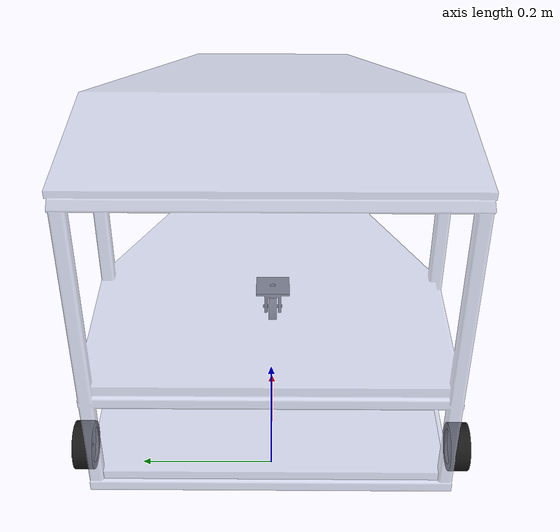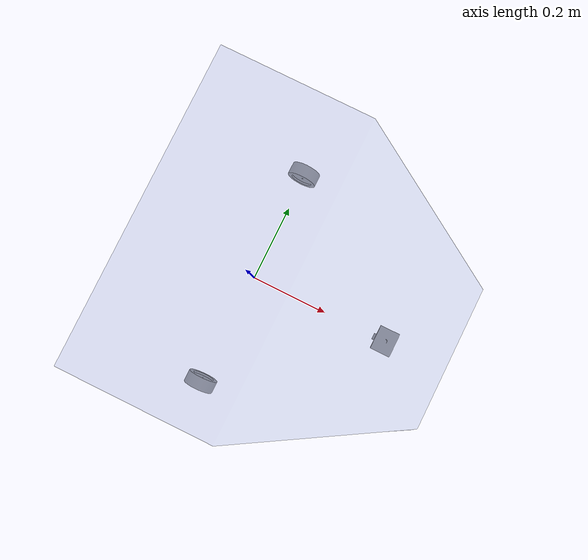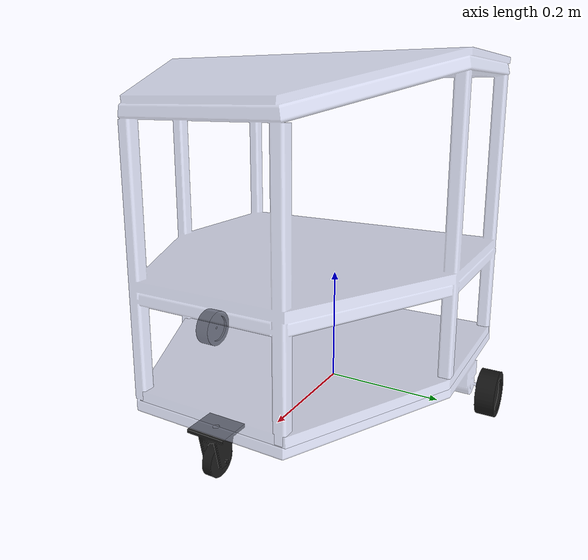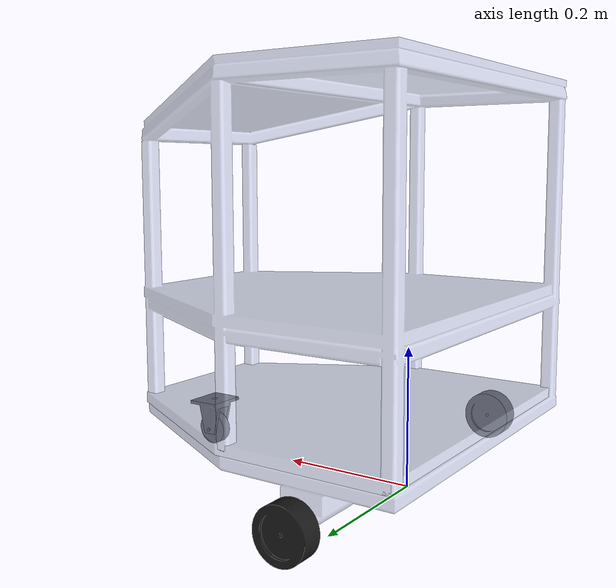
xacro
<?xml version="1.0"?>
<robot xmlns:xacro="http://www.ros.org/wiki/xacro">

    <xacro:include filename="inertial_macros.xacro"/>

    <material name="white"><color rgba="1 1 1 1" /></material>
    <material name="black"><color rgba="0.1 0.1 0.1 1" /></material>
    <material name="transparent_white"><color rgba="0.79216 0.81961 0.93333 0.6" /></material>

    <link name="base_footprint"/>
    <joint name="base_footprint_joint" type="fixed">
        <parent link="base_footprint"/>
        <child link="base_link"/>
        <origin xyz="0 0 0.0445" rpy="0 0 0"/>
    </joint>

    <link name="base_link">
        <inertial>
            <origin xyz="0.106814398044022 0 0.057" rpy="0 0 0"/>
            <mass value="3.2625"/>
            <inertia ixx="0.056906796875" ixy="0" ixz="0" iyy="0.0609283294420498" iyz="0" izz="0.11771278256705"/>
        </inertial>
        <visual>
            <origin xyz="0 0 0" rpy="0 0 0"/>
            <geometry><mesh filename="package://amr_003/meshes/base_link.STL"/></geometry>
            <material name="transparent_white"/>
        </visual>
        <collision>
            <origin xyz="0 0 0.15" rpy="0 0 0"/>
            <geometry><box size="0.45 0.35 0.1"/></geometry>
        </collision>
    </link>

    <link name="chassis_link">
        <inertial>
            <origin xyz="0.222980078166213 0 0.05" rpy="0 0 0" />
            <mass value="7.00166781646683" />
            <inertia ixx="0.109362090239879" ixy="0" ixz="0.00489513284151782" iyy="0.11176801072697" iyz="0" izz="0.208620108039956" />
        </inertial>
        <visual>
            <origin xyz="0 0 0" rpy="0 0 0"/>
            <geometry><mesh filename="package://amr_003/meshes/chassis_link.STL"/></geometry>
            <material name="transparent_white"/>
        </visual>
    </link>
    <joint name="chassis_joint" type="fixed">
        <origin xyz="-0.12372 0 0.0345" rpy="0 0 0"/>
        <parent link="base_link"/>
        <child link="chassis_link"/>
    </joint>

    <link name="left_wheel_link">
        <inertial>
            <origin xyz="0 0 0" rpy="0 0 0"/>
            <mass value="1.0"/>
            <inertia ixx="0.001" ixy="0" ixz="0" iyy="0.001" iyz="0" izz="0.001" />
        </inertial>
        <visual>
            <origin xyz="0 0 0" rpy="0 0 0"/>
            <geometry><mesh filename="package://amr_003/meshes/left_wheel_link.STL"/></geometry>
            <material name="black"/>
        </visual>
        <collision>
            <origin xyz="0 0 0" rpy="0 0 0"/>
            <geometry><sphere radius="0.037"/></geometry>
        </collision>
    </link>
    <joint name="left_wheel_joint" type="continuous">
        <origin xyz="0 0.286 -0.0075" rpy="-1.5708 0 0"/>
        <parent link="base_link"/>
        <child link="left_wheel_link"/>
        <axis xyz="0 0 1"/>
        <limit effort="10.0" velocity="20.0"/>
    </joint>

    <link name="right_wheel_link">
        <inertial>
            <origin xyz="0 0 0" rpy="0 0 0"/>
            <mass value="1.0"/>
            <inertia ixx="0.001" ixy="0" ixz="0" iyy="0.001" iyz="0" izz="0.001" />
        </inertial>
        <visual>
            <origin xyz="0 0 0" rpy="0 0 0"/>
            <geometry><mesh filename="package://amr_003/meshes/right_wheel_link.STL"/></geometry>
            <material name="black"/>
        </visual>
        <collision>
            <origin xyz="0 0 0" rpy="0 0 0"/>
            <geometry><sphere radius="0.037"/></geometry>
        </collision>
    </link>
    <joint name="right_wheel_joint" type="continuous">
        <origin xyz="0 -0.286 -0.0075" rpy="-1.5708 0 0"/>
        <parent link="base_link"/>
        <child link="right_wheel_link"/>
        <axis xyz="0 0 1"/>
        <limit effort="10.0" velocity="20.0"/>
    </joint>

    <link name="bracker_link">
        <visual>
            <origin xyz="0 0 0" rpy="0 0 0"/>
            <geometry><mesh filename="package://amr_003/meshes/bracker_link.STL"/></geometry>
            <material name="black"/>
        </visual>
    </link>
    <joint name="bracker_joint" type="fixed">
        <origin xyz="0.35672 -0.00047549 0.0245" rpy="0 0 0"/>
        <parent link="base_link"/>
        <child link="bracker_link"/>
    </joint>

    <link name="caster_wheel_link">
        <visual>
            <origin xyz="0 0 0" rpy="0 0 0"/>
            <geometry><mesh filename="package://amr_003/meshes/caster_wheel_link.STL"/></geometry>
            <material name="black"/>
        </visual>
    </link>
    <joint name="caster_wheel_joint" type="fixed">
        <origin xyz="0 0.00047549 -0.043" rpy="-1.5708 0 0"/>
        <parent link="bracker_link"/>
        <child link="caster_wheel_link"/>
    </joint>

    <link name="front_caster_collision_link">
        <inertial>
            <origin xyz="0 0 0" rpy="0 0 0"/>
            <mass value="3.0"/>
            <inertia ixx="0.01" ixy="0" ixz="0" iyy="0.01" iyz="0" izz="0.01"/>
        </inertial>
        <collision>
            <origin xyz="0 0 0" rpy="0 0 0"/>
            <geometry><sphere radius="0.026"/></geometry>
        </collision>
    </link>
    <joint name="front_caster_collision_joint" type="fixed">
        <origin xyz="0.415 0 -0.0185" rpy="0 0 0"/>
        <parent link="base_link"/>
        <child link="front_caster_collision_link"/>
    </joint>

    <link name="rear_caster_collision_link">
        <inertial>
            <origin xyz="0 0 0" rpy="0 0 0"/>
            <mass value="1.0"/>
            <inertia ixx="0.01" ixy="0" ixz="0" iyy="0.01" iyz="0" izz="0.01"/>
        </inertial>
        <collision>
            <origin xyz="0 0 0" rpy="0 0 0"/>
            <geometry><sphere radius="0.026"/></geometry>
        </collision>
    </link>
    <joint name="rear_caster_collision_joint" type="fixed">
        <origin xyz="-0.35 0 -0.0185" rpy="0 0 0"/>
        <parent link="base_link"/>
        <child link="rear_caster_collision_link"/>
    </joint>

    <gazebo reference="base_link"><material>Gazebo/Orange</material></gazebo>
    <gazebo reference="chassis_link"><material>Gazebo/Grey</material></gazebo>

    <gazebo reference="left_wheel_link">
        <mu1>1.5</mu1> <mu2>1.5</mu2>
        <kp>1000000.0</kp>
        <kd>100.0</kd>
        <minDepth>0.001</minDepth>
        <maxVel>0.0</maxVel>
        <material>Gazebo/FlatBlack</material>
    </gazebo>

    <gazebo reference="right_wheel_link">
        <mu1>1.5</mu1> <mu2>1.5</mu2>
        <kp>1000000.0</kp>
        <kd>100.0</kd>
        <minDepth>0.001</minDepth>
        <maxVel>0.0</maxVel>
        <material>Gazebo/FlatBlack</material>
    </gazebo>

    <gazebo reference="front_caster_collision_link">
        <mu1>0.0</mu1> <mu2>0.0</mu2>
        <kp>1000000.0</kp>
        <kd>100.0</kd>
        <minDepth>0.001</minDepth>
        <maxVel>0.0</maxVel>
    </gazebo>

    <gazebo reference="rear_caster_collision_link">
        <mu1>0.0</mu1> <mu2>0.0</mu2>
        <kp>1000000.0</kp>
        <kd>100.0</kd>
        <minDepth>0.001</minDepth>
        <maxVel>0.0</maxVel>
    </gazebo>

</robot>
